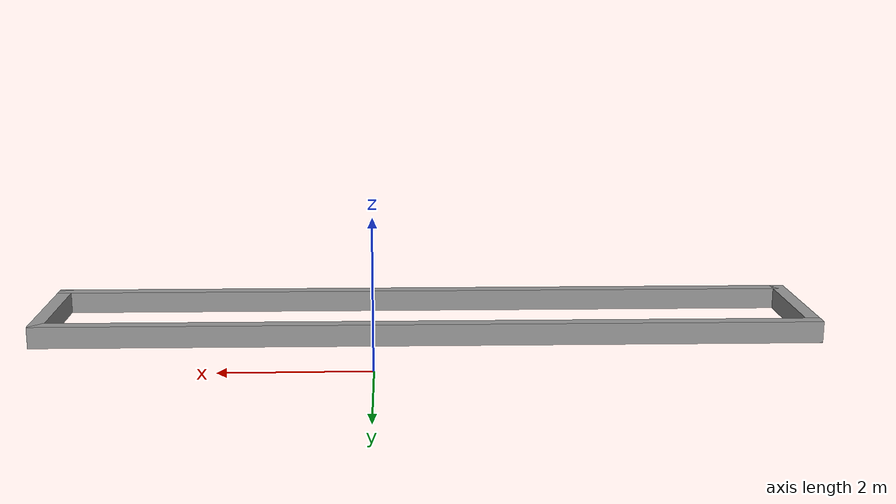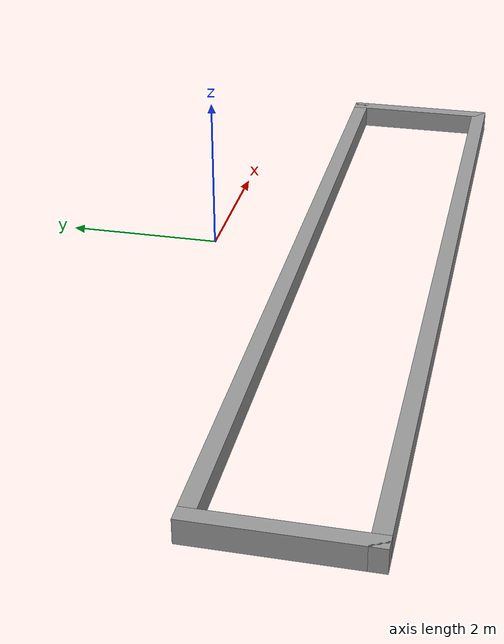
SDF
<?xml version='1.0'?>
<sdf version='1.4'>
  <model name='BuildingDefaultName'>
    <link name='Wall_0'>
      <collision name='Wall_0_Collision'>
        <geometry>
          <box>
            <size>10.84 0.2 0.3</size>
          </box>
        </geometry>
        <pose>0 0 0.15 0 -0 0</pose>
      </collision>
      <visual name='Wall_0_Visual'>
        <pose>0 0 0.15 0 -0 0</pose>
        <geometry>
          <box>
            <size>10.84 0.2 0.3</size>
          </box>
        </geometry>
        <material>
          <script>
            <uri>file://media/materials/scripts/gazebo.material</uri>
            <name>Gazebo/Grey</name>
          </script>
        </material>
      </visual>
      <velocity_decay>
        <linear>0</linear>
        <angular>0</angular>
      </velocity_decay>
      <pose>-0.73 -1.27 0 0 -0 0</pose>
    </link>
    <link name='Wall_1'>
      <collision name='Wall_1_Collision'>
        <geometry>
          <box>
            <size>2.09 0.2 0.3</size>
          </box>
        </geometry>
        <pose>0 0 0.15 0 -0 0</pose>
      </collision>
      <visual name='Wall_1_Visual'>
        <pose>0 0 0.15 0 -0 0</pose>
        <geometry>
          <box>
            <size>2.09 0.2 0.3</size>
          </box>
        </geometry>
        <material>
          <script>
            <uri>file://media/materials/scripts/gazebo.material</uri>
            <name>Gazebo/Grey</name>
          </script>
        </material>
      </visual>
      <velocity_decay>
        <linear>0</linear>
        <angular>0</angular>
      </velocity_decay>
      <pose>4.59 -2.215 0 0 0 -1.5708</pose>
    </link>
    <link name='Wall_2'>
      <collision name='Wall_2_Collision'>
        <geometry>
          <box>
            <size>10.84 0.2 0.3</size>
          </box>
        </geometry>
        <pose>0 0 0.15 0 -0 0</pose>
      </collision>
      <visual name='Wall_2_Visual'>
        <pose>0 0 0.15 0 -0 0</pose>
        <geometry>
          <box>
            <size>10.84 0.2 0.3</size>
          </box>
        </geometry>
        <material>
          <script>
            <uri>file://media/materials/scripts/gazebo.material</uri>
            <name>Gazebo/Grey</name>
          </script>
        </material>
      </visual>
      <velocity_decay>
        <linear>0</linear>
        <angular>0</angular>
      </velocity_decay>
      <pose>-0.73 -3.16 0 0 -0 3.14159</pose>
    </link>
    <link name='Wall_3'>
      <collision name='Wall_3_Collision'>
        <geometry>
          <box>
            <size>2.09 0.2 0.3</size>
          </box>
        </geometry>
        <pose>0 0 0.15 0 -0 0</pose>
      </collision>
      <visual name='Wall_3_Visual'>
        <pose>0 0 0.15 0 -0 0</pose>
        <geometry>
          <box>
            <size>2.09 0.2 0.3</size>
          </box>
        </geometry>
        <material>
          <script>
            <uri>file://media/materials/scripts/gazebo.material</uri>
            <name>Gazebo/Grey</name>
          </script>
        </material>
      </visual>
      <velocity_decay>
        <linear>0</linear>
        <angular>0</angular>
      </velocity_decay>
      <pose>-6.05 -2.215 0 0 -0 1.5708</pose>
    </link>
    <static>1</static>
  </model>
</sdf>
